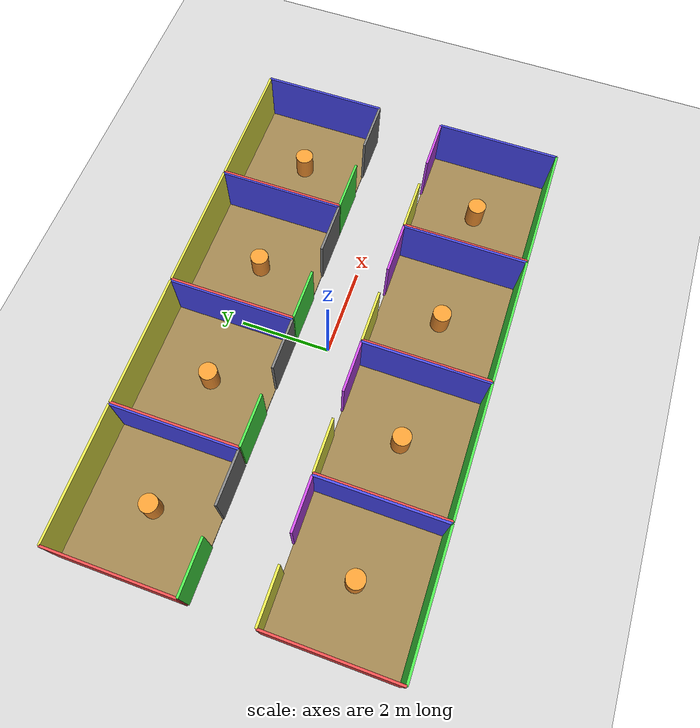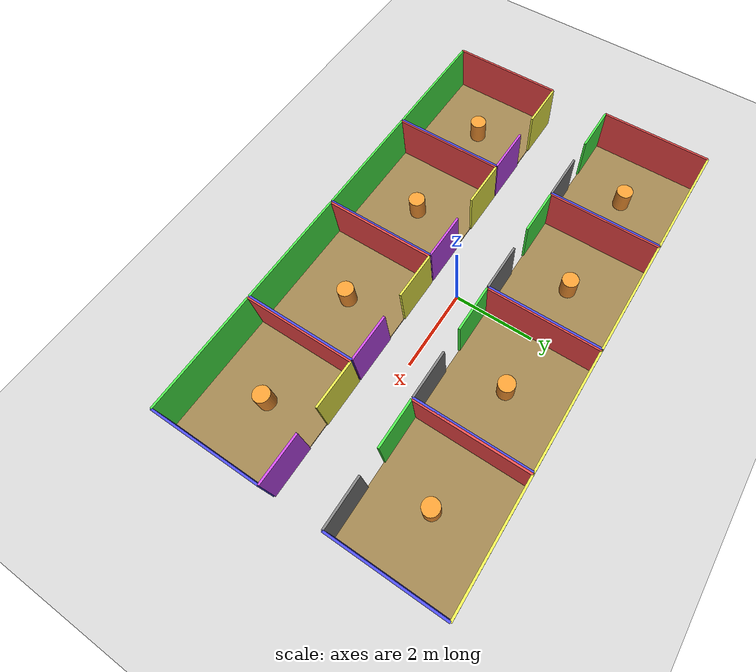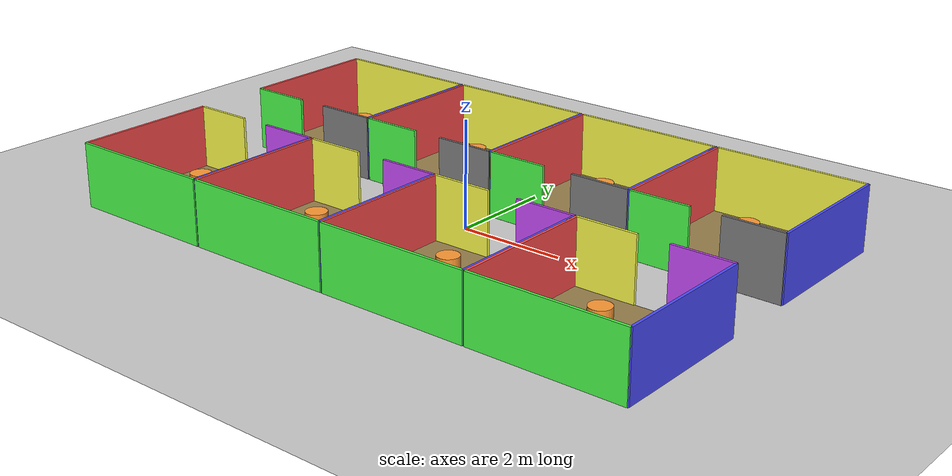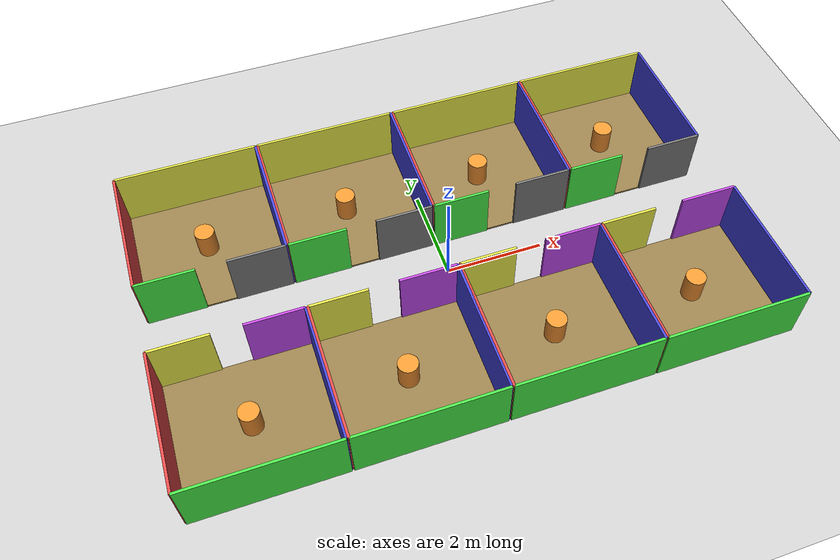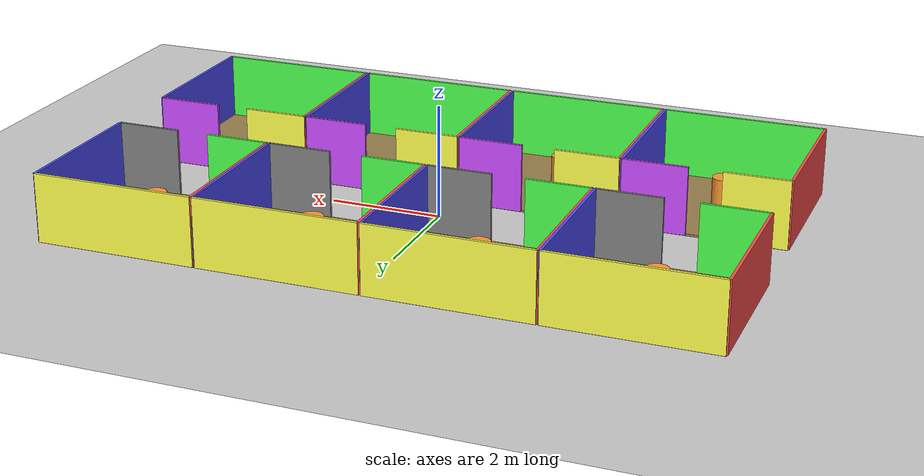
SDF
<?xml version='1.0' encoding='utf-8'?>
<sdf version="1.9">
  <world name="pig_pen_8units_world">
    <gravity>0 0 -9.8</gravity>
    <magnetic_field>0 0 0</magnetic_field>
    <atmosphere type="adiabatic" />
    <plugin filename="gz-sim-physics-system" name="gz::sim::systems::Physics" />
    <plugin filename="gz-sim-sensors-system" name="gz::sim::systems::Sensors">
      <render_engine>ogre2</render_engine>
    </plugin>
    <plugin filename="gz-sim-user-commands-system" name="gz::sim::systems::UserCommands" />
    <plugin filename="gz-sim-scene-broadcaster-system" name="gz::sim::systems::SceneBroadcaster" />
    <light name="sun" type="directional">
      <cast_shadows>true</cast_shadows>
      <pose>0 0 10 0 0 0</pose>
      <diffuse>0.9 0.9 0.9 1</diffuse>
      <specular>0.2 0.2 0.2 1</specular>
      <direction>-0.4 0.1 -1</direction>
    </light>
    <model name="ground_plane">
      <static>true</static>
      <link name="link">
        <collision name="collision">
          <geometry>
            <plane>
              <normal>0 0 1</normal>
              <size>20 20</size>
            </plane>
          </geometry>
          <surface>
            <friction>
              <ode>
                <mu>1.0</mu>
                <mu2>1.0</mu2>
              </ode>
            </friction>
          </surface>
        </collision>
        <visual name="visual">
          <geometry>
            <plane>
              <normal>0 0 1</normal>
              <size>20 20</size>
            </plane>
          </geometry>
          <material>
            <ambient>0.8 0.8 0.8 1</ambient>
            <diffuse>0.8 0.8 0.8 1</diffuse>
            <specular>0.2 0.2 0.2 1</specular>
          </material>
        </visual>
      </link>
    </model>

    <model name="pen1">
      <pose>-4.455 2.125 0 0 0 0</pose>
      <static>true</static>

      <link name="floor">
        <pose>0 0 0 0 0 0</pose>
        <visual name="visual">
          <geometry>
            <box>
              <size>2.89 2.75 0.05</size>
            </box>
          </geometry>
          <material>
            <ambient>0.6 0.5 0.3 1</ambient>
            <diffuse>0.6 0.5 0.3 1</diffuse>
          </material>
        </visual>
        <collision name="collision">
          <geometry>
            <box>
              <size>2.89 2.75 0.05</size>
            </box>
          </geometry>
          <surface>
            <friction>
              <ode>
                <mu>1.0</mu>
                <mu2>1.0</mu2>
              </ode>
            </friction>
          </surface>
        </collision>
      </link>

      <!-- 左牆（pen1，紅色） -->
      <link name="left_wall">
        <pose>-1.445 0 0.61 0 0 0</pose>
        <visual name="visual">
          <geometry>
            <box>
              <size>0.05 2.75 1.22</size>
            </box>
          </geometry>
          <material>
            <ambient>1.0 0.3 0.3 1</ambient>
            <diffuse>1.0 0.3 0.3 1</diffuse>
          </material>
        </visual>
        <collision name="collision">
          <geometry>
            <box>
              <size>0.05 2.75 1.22</size>
            </box>
          </geometry>
        </collision>
      </link>

      <!-- 右牆（pen1，藍色） -->
      <link name="right_wall">
        <pose>1.445 0 0.61 0 0 0</pose>
        <visual name="visual">
          <geometry>
            <box>
              <size>0.05 2.75 1.22</size>
            </box>
          </geometry>
          <material>
            <ambient>0.3 0.3 1.0 1</ambient>
            <diffuse>0.3 0.3 1.0 1</diffuse>
          </material>
        </visual>
        <collision name="collision">
          <geometry>
            <box>
              <size>0.05 2.75 1.22</size>
            </box>
          </geometry>
        </collision>
      </link>

      <!-- 前門左（pen1 上排第 1 間，綠色） -->
      <link name="front_wall_left">
        <pose>-0.87 -1.375 0.61 0 0 0</pose>
        <visual name="visual">
          <geometry>
            <box>
              <size>1.15 0.05 1.22</size>
            </box>
          </geometry>
          <material>
            <ambient>0.3 1.0 0.3 1</ambient>
            <diffuse>0.3 1.0 0.3 1</diffuse>
          </material>
        </visual>
        <collision name="collision">
          <geometry>
            <box>
              <size>1.15 0.05 1.22</size>
            </box>
          </geometry>
        </collision>
      </link>

      <!-- 前門右（pen1 上排第 1 間，灰色） -->
      <link name="front_wall_right">
        <pose>0.87 -1.375 0.61 0 0 0</pose>
        <visual name="visual">
          <geometry>
            <box>
              <size>1.15 0.05 1.22</size>
            </box>
          </geometry>
          <material>
            <ambient>0.5 0.5 0.5 1</ambient>
            <diffuse>0.5 0.5 0.5 1</diffuse>
          </material>
        </visual>
        <collision name="collision">
          <geometry>
            <box>
              <size>1.15 0.05 1.22</size>
            </box>
          </geometry>
        </collision>
      </link>

      <!-- 後門（pen1 上排第 1 間，黃色） -->
      <link name="back_wall">
        <pose>0 1.375 0.61 0 0 0</pose>
        <visual name="visual">
          <geometry>
            <box>
              <size>2.89 0.05 1.22</size>
            </box>
          </geometry>
          <material>
            <ambient>1.0 1.0 0.3 1</ambient>
            <diffuse>1.0 1.0 0.3 1</diffuse>
          </material>
        </visual>
        <collision name="collision">
          <geometry>
            <box>
              <size>2.89 0.05 1.22</size>
            </box>
          </geometry>
        </collision>
      </link>

      <link name="feeder">
        <pose>0 0 0.325 0 0 0</pose>
        <visual name="visual">
          <geometry>
            <cylinder>
              <radius>0.20</radius>
              <length>0.55</length>
            </cylinder>
          </geometry>
          <material>
            <ambient>1.0 0.6 0.2 1</ambient>
            <diffuse>1.0 0.6 0.2 1</diffuse>
          </material>
        </visual>
        <collision name="collision">
          <geometry>
            <cylinder>
              <radius>0.20</radius>
              <length>0.55</length>
            </cylinder>
          </geometry>
        </collision>
      </link>
    </model>

    <model name="pen2">
      <pose>-1.525 2.125 0 0 0 0</pose>
      <static>true</static>

      <link name="floor">
        <pose>0 0 0 0 0 0</pose>
        <visual name="visual">
          <geometry>
            <box>
              <size>2.89 2.75 0.05</size>
            </box>
          </geometry>
          <material>
            <ambient>0.6 0.5 0.3 1</ambient>
            <diffuse>0.6 0.5 0.3 1</diffuse>
          </material>
        </visual>
        <collision name="collision">
          <geometry>
            <box>
              <size>2.89 2.75 0.05</size>
            </box>
          </geometry>
          <surface>
            <friction>
              <ode>
                <mu>1.0</mu>
                <mu2>1.0</mu2>
              </ode>
            </friction>
          </surface>
        </collision>
      </link>

      <!-- 左牆（pen2，紅色） -->
      <link name="left_wall">
        <pose>-1.445 0 0.61 0 0 0</pose>
        <visual name="visual">
          <geometry>
            <box>
              <size>0.05 2.75 1.22</size>
            </box>
          </geometry>
          <material>
            <ambient>1.0 0.3 0.3 1</ambient>
            <diffuse>1.0 0.3 0.3 1</diffuse>
          </material>
        </visual>
        <collision name="collision">
          <geometry>
            <box>
              <size>0.05 2.75 1.22</size>
            </box>
          </geometry>
        </collision>
      </link>

      <!-- 右牆（pen2，藍色） -->
      <link name="right_wall">
        <pose>1.445 0 0.61 0 0 0</pose>
        <visual name="visual">
          <geometry>
            <box>
              <size>0.05 2.75 1.22</size>
            </box>
          </geometry>
          <material>
            <ambient>0.3 0.3 1.0 1</ambient>
            <diffuse>0.3 0.3 1.0 1</diffuse>
          </material>
        </visual>
        <collision name="collision">
          <geometry>
            <box>
              <size>0.05 2.75 1.22</size>
            </box>
          </geometry>
        </collision>
      </link>

      <!-- 前門左（pen2 上排第 2 間，綠色） -->
      <link name="front_wall_left">
        <pose>-0.87 -1.375 0.61 0 0 0</pose>
        <visual name="visual">
          <geometry>
            <box>
              <size>1.15 0.05 1.22</size>
            </box>
          </geometry>
          <material>
            <ambient>0.3 1.0 0.3 1</ambient>
            <diffuse>0.3 1.0 0.3 1</diffuse>
          </material>
        </visual>
        <collision name="collision">
          <geometry>
            <box>
              <size>1.15 0.05 1.22</size>
            </box>
          </geometry>
        </collision>
      </link>

      <!-- 前門右（pen2 上排第 2 間，灰色） -->
      <link name="front_wall_right">
        <pose>0.87 -1.375 0.61 0 0 0</pose>
        <visual name="visual">
          <geometry>
            <box>
              <size>1.15 0.05 1.22</size>
            </box>
          </geometry>
          <material>
            <ambient>0.5 0.5 0.5 1</ambient>
            <diffuse>0.5 0.5 0.5 1</diffuse>
          </material>
        </visual>
        <collision name="collision">
          <geometry>
            <box>
              <size>1.15 0.05 1.22</size>
            </box>
          </geometry>
        </collision>
      </link>

      <!-- 後門（pen2 上排第 2 間，黃色） -->
      <link name="back_wall">
        <pose>0 1.375 0.61 0 0 0</pose>
        <visual name="visual">
          <geometry>
            <box>
              <size>2.89 0.05 1.22</size>
            </box>
          </geometry>
          <material>
            <ambient>1.0 1.0 0.3 1</ambient>
            <diffuse>1.0 1.0 0.3 1</diffuse>
          </material>
        </visual>
        <collision name="collision">
          <geometry>
            <box>
              <size>2.89 0.05 1.22</size>
            </box>
          </geometry>
        </collision>
      </link>

      <link name="feeder">
        <pose>0 0 0.325 0 0 0</pose>
        <visual name="visual">
          <geometry>
            <cylinder>
              <radius>0.20</radius>
              <length>0.55</length>
            </cylinder>
          </geometry>
          <material>
            <ambient>1.0 0.6 0.2 1</ambient>
            <diffuse>1.0 0.6 0.2 1</diffuse>
          </material>
        </visual>
        <collision name="collision">
          <geometry>
            <cylinder>
              <radius>0.20</radius>
              <length>0.55</length>
            </cylinder>
          </geometry>
        </collision>
      </link>
    </model>

    <model name="pen3">
      <pose>1.405 2.125 0 0 0 0</pose>
      <static>true</static>

      <link name="floor">
        <pose>0 0 0 0 0 0</pose>
        <visual name="visual">
          <geometry>
            <box>
              <size>2.89 2.75 0.05</size>
            </box>
          </geometry>
          <material>
            <ambient>0.6 0.5 0.3 1</ambient>
            <diffuse>0.6 0.5 0.3 1</diffuse>
          </material>
        </visual>
        <collision name="collision">
          <geometry>
            <box>
              <size>2.89 2.75 0.05</size>
            </box>
          </geometry>
          <surface>
            <friction>
              <ode>
                <mu>1.0</mu>
                <mu2>1.0</mu2>
              </ode>
            </friction>
          </surface>
        </collision>
      </link>

      <!-- 左牆（pen3，紅色） -->
      <link name="left_wall">
        <pose>-1.445 0 0.61 0 0 0</pose>
        <visual name="visual">
          <geometry>
            <box>
              <size>0.05 2.75 1.22</size>
            </box>
          </geometry>
          <material>
            <ambient>1.0 0.3 0.3 1</ambient>
            <diffuse>1.0 0.3 0.3 1</diffuse>
          </material>
        </visual>
        <collision name="collision">
          <geometry>
            <box>
              <size>0.05 2.75 1.22</size>
            </box>
          </geometry>
        </collision>
      </link>

      <!-- 右牆（pen3，藍色） -->
      <link name="right_wall">
        <pose>1.445 0 0.61 0 0 0</pose>
        <visual name="visual">
          <geometry>
            <box>
              <size>0.05 2.75 1.22</size>
            </box>
          </geometry>
          <material>
            <ambient>0.3 0.3 1.0 1</ambient>
            <diffuse>0.3 0.3 1.0 1</diffuse>
          </material>
        </visual>
        <collision name="collision">
          <geometry>
            <box>
              <size>0.05 2.75 1.22</size>
            </box>
          </geometry>
        </collision>
      </link>

      <!-- 前門左（pen3 上排第 3 間，綠色） -->
      <link name="front_wall_left">
        <pose>-0.87 -1.375 0.61 0 0 0</pose>
        <visual name="visual">
          <geometry>
            <box>
              <size>1.15 0.05 1.22</size>
            </box>
          </geometry>
          <material>
            <ambient>0.3 1.0 0.3 1</ambient>
            <diffuse>0.3 1.0 0.3 1</diffuse>
          </material>
        </visual>
        <collision name="collision">
          <geometry>
            <box>
              <size>1.15 0.05 1.22</size>
            </box>
          </geometry>
        </collision>
      </link>

      <!-- 前門右（pen3 上排第 3 間，灰色） -->
      <link name="front_wall_right">
        <pose>0.87 -1.375 0.61 0 0 0</pose>
        <visual name="visual">
          <geometry>
            <box>
              <size>1.15 0.05 1.22</size>
            </box>
          </geometry>
          <material>
            <ambient>0.5 0.5 0.5 1</ambient>
            <diffuse>0.5 0.5 0.5 1</diffuse>
          </material>
        </visual>
        <collision name="collision">
          <geometry>
            <box>
              <size>1.15 0.05 1.22</size>
            </box>
          </geometry>
        </collision>
      </link>

      <!-- 後門（pen3 上排第 3 間，黃色） -->
      <link name="back_wall">
        <pose>0 1.375 0.61 0 0 0</pose>
        <visual name="visual">
          <geometry>
            <box>
              <size>2.89 0.05 1.22</size>
            </box>
          </geometry>
          <material>
            <ambient>1.0 1.0 0.3 1</ambient>
            <diffuse>1.0 1.0 0.3 1</diffuse>
          </material>
        </visual>
        <collision name="collision">
          <geometry>
            <box>
              <size>2.89 0.05 1.22</size>
            </box>
          </geometry>
        </collision>
      </link>

      <link name="feeder">
        <pose>0 0 0.325 0 0 0</pose>
        <visual name="visual">
          <geometry>
            <cylinder>
              <radius>0.20</radius>
              <length>0.55</length>
            </cylinder>
          </geometry>
          <material>
            <ambient>1.0 0.6 0.2 1</ambient>
            <diffuse>1.0 0.6 0.2 1</diffuse>
          </material>
        </visual>
        <collision name="collision">
          <geometry>
            <cylinder>
              <radius>0.20</radius>
              <length>0.55</length>
            </cylinder>
          </geometry>
        </collision>
      </link>
    </model>

    <model name="pen4">
      <pose>4.335 2.125 0 0 0 0</pose>
      <static>true</static>

      <link name="floor">
        <pose>0 0 0 0 0 0</pose>
        <visual name="visual">
          <geometry>
            <box>
              <size>2.89 2.75 0.05</size>
            </box>
          </geometry>
          <material>
            <ambient>0.6 0.5 0.3 1</ambient>
            <diffuse>0.6 0.5 0.3 1</diffuse>
          </material>
        </visual>
        <collision name="collision">
          <geometry>
            <box>
              <size>2.89 2.75 0.05</size>
            </box>
          </geometry>
          <surface>
            <friction>
              <ode>
                <mu>1.0</mu>
                <mu2>1.0</mu2>
              </ode>
            </friction>
          </surface>
        </collision>
      </link>

      <!-- 左牆（pen4，紅色） -->
      <link name="left_wall">
        <pose>-1.445 0 0.61 0 0 0</pose>
        <visual name="visual">
          <geometry>
            <box>
              <size>0.05 2.75 1.22</size>
            </box>
          </geometry>
          <material>
            <ambient>1.0 0.3 0.3 1</ambient>
            <diffuse>1.0 0.3 0.3 1</diffuse>
          </material>
        </visual>
        <collision name="collision">
          <geometry>
            <box>
              <size>0.05 2.75 1.22</size>
            </box>
          </geometry>
        </collision>
      </link>

      <!-- 右牆（pen4，藍色） -->
      <link name="right_wall">
        <pose>1.445 0 0.61 0 0 0</pose>
        <visual name="visual">
          <geometry>
            <box>
              <size>0.05 2.75 1.22</size>
            </box>
          </geometry>
          <material>
            <ambient>0.3 0.3 1.0 1</ambient>
            <diffuse>0.3 0.3 1.0 1</diffuse>
          </material>
        </visual>
        <collision name="collision">
          <geometry>
            <box>
              <size>0.05 2.75 1.22</size>
            </box>
          </geometry>
        </collision>
      </link>

      <!-- 前門左（pen4 上排第 4 間，綠色） -->
      <link name="front_wall_left">
        <pose>-0.87 -1.375 0.61 0 0 0</pose>
        <visual name="visual">
          <geometry>
            <box>
              <size>1.15 0.05 1.22</size>
            </box>
          </geometry>
          <material>
            <ambient>0.3 1.0 0.3 1</ambient>
            <diffuse>0.3 1.0 0.3 1</diffuse>
          </material>
        </visual>
        <collision name="collision">
          <geometry>
            <box>
              <size>1.15 0.05 1.22</size>
            </box>
          </geometry>
        </collision>
      </link>

      <!-- 前門右（pen4 上排第 4 間，綠色） -->
      <link name="front_wall_right">
        <pose>0.87 -1.375 0.61 0 0 0</pose>
        <visual name="visual">
          <geometry>
            <box>
              <size>1.15 0.05 1.22</size>
            </box>
          </geometry>
          <material>
            <ambient>0.5 0.5 0.5 1</ambient>
            <diffuse>0.5 0.5 0.5 1</diffuse>
          </material>
        </visual>
        <collision name="collision">
          <geometry>
            <box>
              <size>1.15 0.05 1.22</size>
            </box>
          </geometry>
        </collision>
      </link>

      <!-- 後門（pen4 上排第 4 間，黃色） -->
      <link name="back_wall">
        <pose>0 1.375 0.61 0 0 0</pose>
        <visual name="visual">
          <geometry>
            <box>
              <size>2.89 0.05 1.22</size>
            </box>
          </geometry>
          <material>
            <ambient>1.0 1.0 0.3 1</ambient>
            <diffuse>1.0 1.0 0.3 1</diffuse>
          </material>
        </visual>
        <collision name="collision">
          <geometry>
            <box>
              <size>2.89 0.05 1.22</size>
            </box>
          </geometry>
        </collision>
      </link>

      <link name="feeder">
        <pose>0 0 0.325 0 0 0</pose>
        <visual name="visual">
          <geometry>
            <cylinder>
              <radius>0.20</radius>
              <length>0.55</length>
            </cylinder>
          </geometry>
          <material>
            <ambient>1.0 0.6 0.2 1</ambient>
            <diffuse>1.0 0.6 0.2 1</diffuse>
          </material>
        </visual>
        <collision name="collision">
          <geometry>
            <cylinder>
              <radius>0.20</radius>
              <length>0.55</length>
            </cylinder>
          </geometry>
        </collision>
      </link>
    </model>

    <model name="pen5">
      <pose>-4.455 -2.125 0 0 0 0</pose>
      <static>true</static>

      <link name="floor">
        <pose>0 0 0 0 0 0</pose>
        <visual name="visual">
          <geometry>
            <box>
              <size>2.89 2.75 0.05</size>
            </box>
          </geometry>
          <material>
            <ambient>0.6 0.5 0.3 1</ambient>
            <diffuse>0.6 0.5 0.3 1</diffuse>
          </material>
        </visual>
        <collision name="collision">
          <geometry>
            <box>
              <size>2.89 2.75 0.05</size>
            </box>
          </geometry>
          <surface>
            <friction>
              <ode>
                <mu>1.0</mu>
                <mu2>1.0</mu2>
              </ode>
            </friction>
          </surface>
        </collision>
      </link>

      <!-- 左牆（pen5，紅色） -->
      <link name="left_wall">
        <pose>-1.445 0 0.61 0 0 0</pose>
        <visual name="visual">
          <geometry>
            <box>
              <size>0.05 2.75 1.22</size>
            </box>
          </geometry>
          <material>
            <ambient>1.0 0.3 0.3 1</ambient>
            <diffuse>1.0 0.3 0.3 1</diffuse>
          </material>
        </visual>
        <collision name="collision">
          <geometry>
            <box>
              <size>0.05 2.75 1.22</size>
            </box>
          </geometry>
        </collision>
      </link>

      <!-- 右牆（pen5，藍色） -->
      <link name="right_wall">
        <pose>1.445 0 0.61 0 0 0</pose>
        <visual name="visual">
          <geometry>
            <box>
              <size>0.05 2.75 1.22</size>
            </box>
          </geometry>
          <material>
            <ambient>0.3 0.3 1.0 1</ambient>
            <diffuse>0.3 0.3 1.0 1</diffuse>
          </material>
        </visual>
        <collision name="collision">
          <geometry>
            <box>
              <size>0.05 2.75 1.22</size>
            </box>
          </geometry>
        </collision>
      </link>

      <!-- 後門左（pen5，黃色） -->
      <link name="back_wall_left">
        <pose>-0.87 1.375 0.61 0 0 0</pose>
        <visual name="visual">
          <geometry>
            <box>
              <size>1.15 0.05 1.22</size>
            </box>
          </geometry>
          <material>
            <ambient>1.0 1.0 0.3 1</ambient>
            <diffuse>1.0 1.0 0.3 1</diffuse>
          </material>
        </visual>
        <collision name="collision">
          <geometry>
            <box>
              <size>1.15 0.05 1.22</size>
            </box>
          </geometry>
        </collision>
      </link>

      <!-- 後門右（pen5，紫色） -->
      <link name="back_wall_right">
        <pose>0.87 1.375 0.61 0 0 0</pose>
        <visual name="visual">
          <geometry>
            <box>
              <size>1.15 0.05 1.22</size>
            </box>
          </geometry>
          <material>
            <ambient>0.8 0.3 1.0 1</ambient>
            <diffuse>0.8 0.3 1.0 1</diffuse>
          </material>
        </visual>
        <collision name="collision">
          <geometry>
            <box>
              <size>1.15 0.05 1.22</size>
            </box>
          </geometry>
        </collision>
      </link>

      <link name="front_wall">
        <pose>0 -1.375 0.61 0 0 0</pose>
        <visual name="visual">
          <geometry>
            <box>
              <size>2.89 0.05 1.22</size>
            </box>
          </geometry>
          <material>
            <ambient>0.3 1.0 0.3 1</ambient>
            <diffuse>0.3 1.0 0.3 1</diffuse>
          </material>
        </visual>
        <collision name="collision">
          <geometry>
            <box>
              <size>2.89 0.05 1.22</size>
            </box>
          </geometry>
        </collision>
      </link>

      <link name="feeder">
        <pose>0 0 0.325 0 0 0</pose>
        <visual name="visual">
          <geometry>
            <cylinder>
              <radius>0.20</radius>
              <length>0.55</length>
            </cylinder>
          </geometry>
          <material>
            <ambient>1.0 0.6 0.2 1</ambient>
            <diffuse>1.0 0.6 0.2 1</diffuse>
          </material>
        </visual>
        <collision name="collision">
          <geometry>
            <cylinder>
              <radius>0.20</radius>
              <length>0.55</length>
            </cylinder>
          </geometry>
        </collision>
      </link>
    </model>

    <model name="pen6">
      <pose>-1.525 -2.125 0 0 0 0</pose>
      <static>true</static>

      <link name="floor">
        <pose>0 0 0 0 0 0</pose>
        <visual name="visual">
          <geometry>
            <box>
              <size>2.89 2.75 0.05</size>
            </box>
          </geometry>
          <material>
            <ambient>0.6 0.5 0.3 1</ambient>
            <diffuse>0.6 0.5 0.3 1</diffuse>
          </material>
        </visual>
        <collision name="collision">
          <geometry>
            <box>
              <size>2.89 2.75 0.05</size>
            </box>
          </geometry>
          <surface>
            <friction>
              <ode>
                <mu>1.0</mu>
                <mu2>1.0</mu2>
              </ode>
            </friction>
          </surface>
        </collision>
      </link>

      <!-- 左牆（pen6，紅色） -->
      <link name="left_wall">
        <pose>-1.445 0 0.61 0 0 0</pose>
        <visual name="visual">
          <geometry>
            <box>
              <size>0.05 2.75 1.22</size>
            </box>
          </geometry>
          <material>
            <ambient>1.0 0.3 0.3 1</ambient>
            <diffuse>1.0 0.3 0.3 1</diffuse>
          </material>
        </visual>
        <collision name="collision">
          <geometry>
            <box>
              <size>0.05 2.75 1.22</size>
            </box>
          </geometry>
        </collision>
      </link>

      <!-- 右牆（pen6，藍色） -->
      <link name="right_wall">
        <pose>1.445 0 0.61 0 0 0</pose>
        <visual name="visual">
          <geometry>
            <box>
              <size>0.05 2.75 1.22</size>
            </box>
          </geometry>
          <material>
            <ambient>0.3 0.3 1.0 1</ambient>
            <diffuse>0.3 0.3 1.0 1</diffuse>
          </material>
        </visual>
        <collision name="collision">
          <geometry>
            <box>
              <size>0.05 2.75 1.22</size>
            </box>
          </geometry>
        </collision>
      </link>

      <!-- 後門左（pen6，黃色） -->
      <link name="back_wall_left">
        <pose>-0.87 1.375 0.61 0 0 0</pose>
        <visual name="visual">
          <geometry>
            <box>
              <size>1.15 0.05 1.22</size>
            </box>
          </geometry>
          <material>
            <ambient>1.0 1.0 0.3 1</ambient>
            <diffuse>1.0 1.0 0.3 1</diffuse>
          </material>
        </visual>
        <collision name="collision">
          <geometry>
            <box>
              <size>1.15 0.05 1.22</size>
            </box>
          </geometry>
        </collision>
      </link>

      <!-- 後門右（pen6，紫色） -->
      <link name="back_wall_right">
        <pose>0.87 1.375 0.61 0 0 0</pose>
        <visual name="visual">
          <geometry>
            <box>
              <size>1.15 0.05 1.22</size>
            </box>
          </geometry>
          <material>
            <ambient>0.8 0.3 1.0 1</ambient>
            <diffuse>0.8 0.3 1.0 1</diffuse>
          </material>
        </visual>
        <collision name="collision">
          <geometry>
            <box>
              <size>1.15 0.05 1.22</size>
            </box>
          </geometry>
        </collision>
      </link>

      <link name="front_wall">
        <pose>0 -1.375 0.61 0 0 0</pose>
        <visual name="visual">
          <geometry>
            <box>
              <size>2.89 0.05 1.22</size>
            </box>
          </geometry>
          <material>
            <ambient>0.3 1.0 0.3 1</ambient>
            <diffuse>0.3 1.0 0.3 1</diffuse>
          </material>
        </visual>
        <collision name="collision">
          <geometry>
            <box>
              <size>2.89 0.05 1.22</size>
            </box>
          </geometry>
        </collision>
      </link>

      <link name="feeder">
        <pose>0 0 0.325 0 0 0</pose>
        <visual name="visual">
          <geometry>
            <cylinder>
              <radius>0.20</radius>
              <length>0.55</length>
            </cylinder>
          </geometry>
          <material>
            <ambient>1.0 0.6 0.2 1</ambient>
            <diffuse>1.0 0.6 0.2 1</diffuse>
          </material>
        </visual>
        <collision name="collision">
          <geometry>
            <cylinder>
              <radius>0.20</radius>
              <length>0.55</length>
            </cylinder>
          </geometry>
        </collision>
      </link>
    </model>

    <model name="pen7">
      <pose>1.405 -2.125 0 0 0 0</pose>
      <static>true</static>

      <link name="floor">
        <pose>0 0 0 0 0 0</pose>
        <visual name="visual">
          <geometry>
            <box>
              <size>2.89 2.75 0.05</size>
            </box>
          </geometry>
          <material>
            <ambient>0.6 0.5 0.3 1</ambient>
            <diffuse>0.6 0.5 0.3 1</diffuse>
          </material>
        </visual>
        <collision name="collision">
          <geometry>
            <box>
              <size>2.89 2.75 0.05</size>
            </box>
          </geometry>
          <surface>
            <friction>
              <ode>
                <mu>1.0</mu>
                <mu2>1.0</mu2>
              </ode>
            </friction>
          </surface>
        </collision>
      </link>

      <!-- 左牆（pen7，紅色） -->
      <link name="left_wall">
        <pose>-1.445 0 0.61 0 0 0</pose>
        <visual name="visual">
          <geometry>
            <box>
              <size>0.05 2.75 1.22</size>
            </box>
          </geometry>
          <material>
            <ambient>1.0 0.3 0.3 1</ambient>
            <diffuse>1.0 0.3 0.3 1</diffuse>
          </material>
        </visual>
        <collision name="collision">
          <geometry>
            <box>
              <size>0.05 2.75 1.22</size>
            </box>
          </geometry>
        </collision>
      </link>

      <!-- 右牆（pen7，藍色） -->
      <link name="right_wall">
        <pose>1.445 0 0.61 0 0 0</pose>
        <visual name="visual">
          <geometry>
            <box>
              <size>0.05 2.75 1.22</size>
            </box>
          </geometry>
          <material>
            <ambient>0.3 0.3 1.0 1</ambient>
            <diffuse>0.3 0.3 1.0 1</diffuse>
          </material>
        </visual>
        <collision name="collision">
          <geometry>
            <box>
              <size>0.05 2.75 1.22</size>
            </box>
          </geometry>
        </collision>
      </link>

      <!-- 後門左（pen7，黃色） -->
      <link name="back_wall_left">
        <pose>-0.87 1.375 0.61 0 0 0</pose>
        <visual name="visual">
          <geometry>
            <box>
              <size>1.15 0.05 1.22</size>
            </box>
          </geometry>
          <material>
            <ambient>1.0 1.0 0.3 1</ambient>
            <diffuse>1.0 1.0 0.3 1</diffuse>
          </material>
        </visual>
        <collision name="collision">
          <geometry>
            <box>
              <size>1.15 0.05 1.22</size>
            </box>
          </geometry>
        </collision>
      </link>

      <!-- 後門右（pen7，紫色） -->
      <link name="back_wall_right">
        <pose>0.87 1.375 0.61 0 0 0</pose>
        <visual name="visual">
          <geometry>
            <box>
              <size>1.15 0.05 1.22</size>
            </box>
          </geometry>
          <material>
            <ambient>0.8 0.3 1.0 1</ambient>
            <diffuse>0.8 0.3 1.0 1</diffuse>
          </material>
        </visual>
        <collision name="collision">
          <geometry>
            <box>
              <size>1.15 0.05 1.22</size>
            </box>
          </geometry>
        </collision>
      </link>

      <link name="front_wall">
        <pose>0 -1.375 0.61 0 0 0</pose>
        <visual name="visual">
          <geometry>
            <box>
              <size>2.89 0.05 1.22</size>
            </box>
          </geometry>
          <material>
            <ambient>0.3 1.0 0.3 1</ambient>
            <diffuse>0.3 1.0 0.3 1</diffuse>
          </material>
        </visual>
        <collision name="collision">
          <geometry>
            <box>
              <size>2.89 0.05 1.22</size>
            </box>
          </geometry>
        </collision>
      </link>

      <link name="feeder">
        <pose>0 0 0.325 0 0 0</pose>
        <visual name="visual">
          <geometry>
            <cylinder>
              <radius>0.20</radius>
              <length>0.55</length>
            </cylinder>
          </geometry>
          <material>
            <ambient>1.0 0.6 0.2 1</ambient>
            <diffuse>1.0 0.6 0.2 1</diffuse>
          </material>
        </visual>
        <collision name="collision">
          <geometry>
            <cylinder>
              <radius>0.20</radius>
              <length>0.55</length>
            </cylinder>
          </geometry>
        </collision>
      </link>
    </model>

    <model name="pen8">
      <pose>4.335 -2.125 0 0 0 0</pose>
      <static>true</static>

      <link name="floor">
        <pose>0 0 0 0 0 0</pose>
        <visual name="visual">
          <geometry>
            <box>
              <size>2.89 2.75 0.05</size>
            </box>
          </geometry>
          <material>
            <ambient>0.6 0.5 0.3 1</ambient>
            <diffuse>0.6 0.5 0.3 1</diffuse>
          </material>
        </visual>
        <collision name="collision">
          <geometry>
            <box>
              <size>2.89 2.75 0.05</size>
            </box>
          </geometry>
        </collision>
      </link>

      <!-- 左牆（pen8，紅色） -->
      <link name="left_wall">
        <pose>-1.445 0 0.61 0 0 0</pose>
        <visual name="visual">
          <geometry>
            <box>
              <size>0.05 2.75 1.22</size>
            </box>
          </geometry>
          <material>
            <ambient>1.0 0.3 0.3 1</ambient>
            <diffuse>1.0 0.3 0.3 1</diffuse>
          </material>
        </visual>
        <collision name="collision">
          <geometry>
            <box>
              <size>0.05 2.75 1.22</size>
            </box>
          </geometry>
        </collision>
      </link>

      <!-- 右牆（pen8，藍色） -->
      <link name="right_wall">
        <pose>1.445 0 0.61 0 0 0</pose>
        <visual name="visual">
          <geometry>
            <box>
              <size>0.05 2.75 1.22</size>
            </box>
          </geometry>
          <material>
            <ambient>0.3 0.3 1.0 1</ambient>
            <diffuse>0.3 0.3 1.0 1</diffuse>
          </material>
        </visual>
        <collision name="collision">
          <geometry>
            <box>
              <size>0.05 2.75 1.22</size>
            </box>
          </geometry>
        </collision>
      </link>

      <!-- 後門左（pen8，黃色） -->
      <link name="back_wall_left">
        <pose>-0.87 1.375 0.61 0 0 0</pose>
        <visual name="visual">
          <geometry>
            <box>
              <size>1.15 0.05 1.22</size>
            </box>
          </geometry>
          <material>
            <ambient>1.0 1.0 0.3 1</ambient>
            <diffuse>1.0 1.0 0.3 1</diffuse>
          </material>
        </visual>
        <collision name="collision">
          <geometry>
            <box>
              <size>1.15 0.05 1.22</size>
            </box>
          </geometry>
        </collision>
      </link>

      <!-- 後門右（pen8，紫色） -->
      <link name="back_wall_right">
        <pose>0.87 1.375 0.61 0 0 0</pose>
        <visual name="visual">
          <geometry>
            <box>
              <size>1.15 0.05 1.22</size>
            </box>
          </geometry>
          <material>
            <ambient>0.8 0.3 1.0 1</ambient>
            <diffuse>0.8 0.3 1.0 1</diffuse>
          </material>
        </visual>
        <collision name="collision">
          <geometry>
            <box>
              <size>1.15 0.05 1.22</size>
            </box>
          </geometry>
        </collision>
      </link>

      <link name="front_wall">
        <pose>0 -1.375 0.61 0 0 0</pose>
        <visual name="visual">
          <geometry>
            <box>
              <size>2.89 0.05 1.22</size>
            </box>
          </geometry>
          <material>
            <ambient>0.3 1.0 0.3 1</ambient>
            <diffuse>0.3 1.0 0.3 1</diffuse>
          </material>
        </visual>
        <collision name="collision">
          <geometry>
            <box>
              <size>2.89 0.05 1.22</size>
            </box>
          </geometry>
        </collision>
      </link>

      <link name="feeder">
        <pose>0 0 0.325 0 0 0</pose>
        <visual name="visual">
          <geometry>
            <cylinder>
              <radius>0.20</radius>
              <length>0.55</length>
            </cylinder>
          </geometry>
          <material>
            <ambient>1.0 0.6 0.2 1</ambient>
            <diffuse>1.0 0.6 0.2 1</diffuse>
          </material>
        </visual>
        <collision name="collision">
          <geometry>
            <cylinder>
              <radius>0.20</radius>
              <length>0.55</length>
            </cylinder>
          </geometry>
        </collision>
      </link>
    </model>
  </world>
</sdf>
